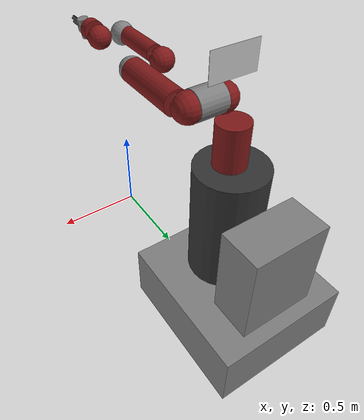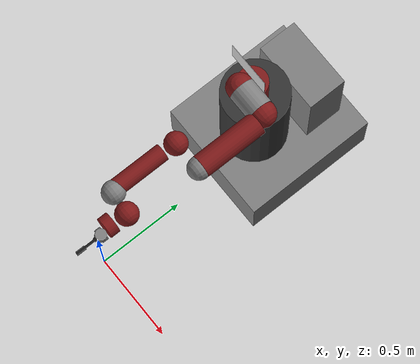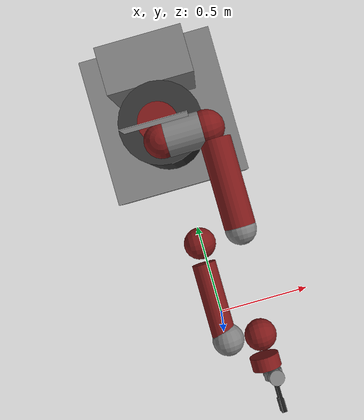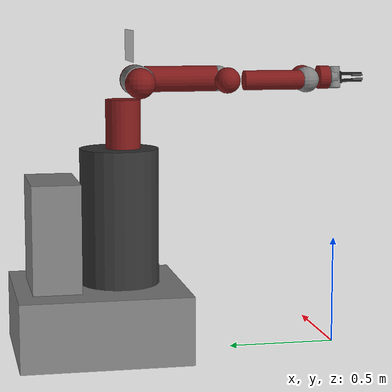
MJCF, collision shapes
<mujoco model='sawyer'>
	<compiler angle='radian' coordinate='local' meshdir='meshes/'/>
	<option collision='all' impratio='1' cone='elliptic' timestep='0.001' gravity='0 0 -9.8' viscosity='0' iterations='20' />
    <size njmax='3000' nconmax='2000' />

	<!--  ================= Visual Elements ================= /-->
    <asset>
		<mesh name='pedestal' file='sawyer/pedestal.stl' />
        <mesh name='base' file='sawyer/base.stl' />
        <mesh name='l0' file='sawyer/l0.stl' />
        <mesh name='head' file='sawyer/head.stl' />
        <mesh name='l1' file='sawyer/l1.stl' />
        <mesh name='l2' file='sawyer/l2.stl' />
        <mesh name='l3' file='sawyer/l3.stl' />
        <mesh name='l4' file='sawyer/l4.stl' />
        <mesh name='l5' file='sawyer/l5.stl' />
        <mesh name='l6' file='sawyer/l6.stl' />
		<mesh name='half_round_tip' file='sawyer/two_finger_gripper/half_round_tip.stl' />
		<mesh name='electric_gripper_base' file='sawyer/two_finger_gripper/electric_gripper_base.stl' />
        <mesh name='extended_narrow' file='sawyer/two_finger_gripper/extended_narrow.stl'/>
        <mesh name='paddle_tip' file='sawyer/two_finger_gripper/paddle_tip.stl'/>
    </asset>

	<!--  ================= Physical Properties ================= /-->
	<default>
		<geom solref='0.01 1' solimp='0.95 0.95 0.01' condim='4'/>

		<default class='arm'>
			<geom condim='1' friction='0 0 0' density='2700' contype='1' conaffinity='1' />
			<joint limited='true' damping='1' />
		</default>

		<default class='viz'>
			<geom contype='0' conaffinity='0' group='1' type='mesh'/>
		</default>

		<default class='gripper'>
			<geom condim='4' density='2700' />
			<joint limited='true' damping='0.001' stiffness='0.1' springref='0' />
		</default>

		<default class='gripper_pads'>
			<geom friction='1 0.005 0.0001' solref='0.01 1' solimp='0.95 0.98 0.001' condim='4' density='100'/>
		</default>

		<default class='takktile_unit'>
			<geom friction='5 0.003 0.0001' solref='0.008 1' solimp='0.95 0.99 0.0001' condim='6' density='300' size='0.003 0.002 0.003'  type='box' rgba='0.9 0.9 0.1 1' />
			<site size='0.0035 0.001 0.0035' type='box' rgba='0.9 0.9 0.3 0.2' />
		</default>
	</default>

	<!--  ================= Kinematic Tree ================= /-->
    <worldbody>
        <light directional='true' cutoff='40' exponent='10' diffuse='.4 .4 .4' specular='.7 .7 .7' pos='0.9 0 1.5' dir='0 0 -1' castshadow="false"/>
        <camera name='static_camera' pos='0.0 -0.75 2.7' euler='0.5 0 0' />
		<!--================= Mocap =================-->

        <!--  ================= Base ================= /-->
        <body name='base' quat='0.5 0 0 -0.5' pos='0 1 0.93' childclass='arm'>
            <inertial pos='0 0 0' mass='0' diaginertia='0 0 0' />
            <body name='controller_box' pos='0 0 0'>
                <inertial pos='-0.325 0 -0.38' mass='46.64' diaginertia='1.71363 1.27988 0.809981' />
                <geom size='0.11 0.2 0.265' pos='-0.325 0 -0.38' type='box' />
            </body>
            <body name='pedestal_feet' pos='0 0 0'>
                <inertial pos='-0.1225 0 -0.758' mass='167.09' diaginertia='8.16095 9.59375 15.0785' />
                <geom size='0.385 0.35 0.155' pos='-0.1225 0 -0.758' type='box' />
            </body>
            <body name='torso' pos='0 0 0'>
                <inertial pos='0 0 0' mass='0.0001' diaginertia='1e-08 1e-08 1e-08' />
                <geom size='0.05 0.05 0.05' type='box' contype='0' conaffinity='0' group='1' rgba='0.2 0.2 0.2 1' />
            </body>
            <body name='pedestal' pos='0 0 0'>
                <inertial pos='0 0 0' quat='0.659267 -0.259505 -0.260945 0.655692' mass='60.864' diaginertia='6.0869 5.81635 4.20915' />
                <geom pos='0.26 0.345 -0.91488' quat='0.5 0.5 -0.5 -0.5' type='mesh' contype='0' conaffinity='0' group='1' rgba='0.2 0.2 0.2 1' mesh='pedestal' />
                <geom size='0.18 0.31' pos='-0.02 0 -0.29' type='cylinder' rgba='0.2 0.2 0.2 1' />
            </body>
            <body name='arm_arm_base_link' pos='0 0 0'>
                <inertial pos='-0.0006241 -2.8025e-05 0.065404' quat='-0.209285 0.674441 0.227335 0.670558' mass='2.0687' diaginertia='0.00740351 0.00681776 0.00672942' />
                <geom type='mesh' contype='0' conaffinity='0' group='1' rgba='0.5 0.1 0.1 1' mesh='base' />
                <geom size='0.08 0.12' pos='0 0 0.12' type='cylinder' rgba='0.5 0.1 0.1 1' />
				<!--  ================= Arm ================= /-->
                <body name='arm_l0' pos='0 0 0.08' quat='1 0 0 0'>
                    <inertial pos='0.024366 0.010969 0.14363' quat='0.894823 0.00899958 -0.170275 0.412573' mass='5.3213' diaginertia='0.0651588 0.0510944 0.0186218' />
                    <joint name='arm_j0' pos='0 0 0' axis='0 0 1' range='-3.0503 3.0503' />
                    <geom type='mesh' contype='0' conaffinity='0' group='1' rgba='0.5 0.1 0.1 1' mesh='l0' />
                    <geom size='0.07' pos='0.08 0 0.23' rgba='0.5 0.1 0.1 1' />

					<!--===Head===-->
					<body name='head' pos='0 0 0.2965'>
                        <inertial pos='0.0053207 -2.6549e-05 0.1021' quat='0.999993 7.08405e-05 -0.00359857 -0.000626247' mass='1.5795' diaginertia='0.0118334 0.00827089 0.00496574' />
                        <geom type='mesh' contype='0' conaffinity='0' group='1' rgba='0.5 0.1 0.1 1' mesh='head' />
						<!--geom size='0.18' pos='0 0 0.08' rgba='0.5 0.1 0.1 1' /-->
                        <body name='screen' pos='0.03 0 0.105' quat='0.5 0.5 0.5 0.5'>
                            <inertial pos='0 0 0' mass='0.0001' diaginertia='1e-08 1e-08 1e-08' />
                            <geom size='0.12 0.07 0.001' type='box' contype='0' conaffinity='0' group='1' rgba='0.8 0.8 0.8 0.9' />
                            <geom size='0.001' rgba='0.2 0.2 0.2 1' />
                        </body>
                        <body name='head_camera' pos='0.0228027 0 0.816572' quat='0.342813 -0.618449 0.618449 -0.342813'>
                            <inertial pos='0.0228027 0 0.216572' quat='0.342813 -0.618449 0.618449 -0.342813' mass='0' diaginertia='0 0 0' />
                        </body>
                    </body>
					<!--===/Head===-->

                    <body name='arm_torso_itb' pos='-0.055 0 0.22' quat='0.707107 0 -0.707107 0'>
                        <inertial pos='0 0 0' mass='0.0001' diaginertia='1e-08 1e-08 1e-08' />
                    </body>
					<body name='arm_l1' pos='0.081 0.05 0.237' quat='0.5 -0.5 0.5 0.5'>
                        <inertial pos='-0.0030849 -0.026811 0.092521' quat='0.424888 0.891987 0.132364 -0.0794296' mass='4.505' diaginertia='0.0224339 0.0221624 0.0097097' />
                        <joint name='arm_j1' pos='0 0 0' axis='0 0 1' range='-3.8095 2.2736' />
                        <geom type='mesh' contype='0' conaffinity='0' group='1' rgba='0.5 0.1 0.1 1' mesh='l1' />
                        <geom size='0.07' pos='0 0 0.1225' rgba='0.5 0.1 0.1 1' />
                        <body name='arm_l1_2' pos='0 0 0'>
                            <inertial pos='1e-08 1e-08 1e-08' quat='0.820473 0.339851 -0.17592 0.424708' mass='1e-08' diaginertia='1e-08 1e-08 1e-08' />
                            <geom size='0.07 0.07' pos='0 0 0.035' type='cylinder' />
                        </body>
                        <body name='arm_l2' pos='0 -0.14 0.1425' quat='0.707107 0.707107 0 0'>
                            <inertial pos='-0.00016044 -0.014967 0.13582' quat='0.707831 -0.0524761 0.0516007 0.702537' mass='1.745' diaginertia='0.0257928 0.025506 0.00292515' />
                            <joint name='arm_j2' pos='0 0 0' axis='0 0 1' range='-3.0426 3.0426' />
                            <geom type='mesh' contype='0' conaffinity='0' group='1' rgba='0.5 0.1 0.1 1' mesh='l2' />
                            <geom size='0.06 0.17' pos='0 0 0.08' type='cylinder' rgba='0.5 0.1 0.1 1' />
                            <body name='arm_l2_2' pos='0 0 0'>
                                <inertial pos='1e-08 1e-08 1e-08' quat='0.820473 0.339851 -0.17592 0.424708' mass='1e-08' diaginertia='1e-08 1e-08 1e-08' />
                                <geom size='0.06' pos='0 0 0.26' />
                            </body>
                            <body name='arm_l3' pos='0 -0.042 0.26' quat='0.707107 -0.707107 0 0'>
                                <inertial pos='-0.0048135 -0.0281 -0.084154' quat='0.902999 0.385391 -0.0880901 0.168247' mass='2.5097' diaginertia='0.0102404 0.0096997 0.00369622' />
                                <joint name='arm_j3' pos='0 0 0' axis='0 0 1' range='-3.0439 3.0439' />
                                <geom type='mesh' contype='0' conaffinity='0' group='1' rgba='0.5 0.1 0.1 1' mesh='l3' />
                                <geom size='0.06' pos='0 -0.01 -0.12' rgba='0.5 0.1 0.1 1' />
                                <body name='arm_l4' pos='0 -0.125 -0.1265' quat='0.707107 0.707107 0 0'>
                                    <inertial pos='-0.0018844 0.0069001 0.1341' quat='0.803612 0.031257 -0.0298334 0.593582' mass='1.1136' diaginertia='0.0136549 0.0135493 0.00127353' />
                                    <joint name='arm_j4' pos='0 0 0' axis='0 0 1' range='-2.9761 2.9761' />
                                    <geom type='mesh' contype='0' conaffinity='0' group='1' rgba='0.5 0.1 0.1 1' mesh='l4' />
                                    <geom size='0.045 0.15' pos='0 0 0.11' type='cylinder' rgba='0.5 0.1 0.1 1' />
                                    <body name='arm_arm_itb' pos='-0.055 0 0.075' quat='0.707107 0 -0.707107 0'>
                                        <inertial pos='0 0 0' mass='0.0001' diaginertia='1e-08 1e-08 1e-08' />
                                    </body>
                                    <body name='arm_l4_2' pos='0 0 0'>
                                        <inertial pos='1e-08 1e-08 1e-08' quat='0.820473 0.339851 -0.17592 0.424708' mass='1e-08' diaginertia='1e-08 1e-08 1e-08' />
                                        <geom size='0.06' pos='0 0.01 0.26' />
                                    </body>
                                    <body name='arm_l5' pos='0 0.031 0.275' quat='0.707107 -0.707107 0 0'>
                                        <inertial pos='0.0061133 -0.023697 0.076416' quat='0.404076 0.9135 0.0473125 0.00158335' mass='1.5625' diaginertia='0.00474131 0.00422857 0.00190672' />
										<joint name='arm_j5' pos='0 0 0' axis='0 0 1' range='-2.9761 2.9761' />
                                        <geom type='mesh' contype='0' conaffinity='0' group='1' rgba='0.5 0.1 0.1 1' mesh='l5' />
                                        <geom size='0.06' pos='0 0 0.1' rgba='0.5 0.1 0.1 1' />
                                        <body name='arm_hand_camera' pos='0.039552 -0.033 0.0695' quat='0.707107 0 0.707107 0'>
                                            <inertial pos='0.039552 -0.033 0.0695' quat='0.707107 0 0.707107 0' mass='0' diaginertia='0 0 0' />
                                        </body>
                                        <body name='arm_wrist' pos='0 0 0.10541' quat='0.707107 0.707107 0 0'>
                                            <inertial pos='0 0 0.10541' quat='0.707107 0.707107 0 0' mass='0' diaginertia='0 0 0' />
                                        </body>
                                        <body name='arm_l6' pos='0 -0.11 0.1053' quat='0.0616248 0.06163 -0.704416 0.704416'>
                                            <inertial pos='-8.0726e-06 0.0085838 -0.0049566' quat='0.479044 0.515636 -0.513069 0.491322' mass='0.3292' diaginertia='0.000360258 0.000311068 0.000214974' />
                                            <joint name='arm_j6' pos='0 0 0' axis='0 0 1' range='-4.7124 4.7124' />
											<body name='gripper_origin' pos='0 0 0.18735' quat='0.707107 0 0 0.707107'>
											</body>
                                            <geom type='mesh' contype='0' conaffinity='0' group='1' rgba='0.5 0.1 0.1 1' mesh='l6' />
                                            <geom size='0.055 0.025' pos='0 0.015 -0.01' type='cylinder' rgba='0.5 0.1 0.1 1' />
                                            <body name='arm_hand' pos='0 0 0.0245' quat='0.707107 0 0 0.707107'>
                                                <inertial pos='1e-08 1e-08 1e-08' quat='0.820473 0.339851 -0.17592 0.424708' mass='1e-08' diaginertia='1e-08 1e-08 1e-08' />
                                                <geom size='0.035 0.015' pos='0 0 0.02' type='cylinder' />
												<!--  ================= Gripper ================= /-->
                                                <body name='arm_gripper_base' pos='0 0 0.025'>
                                                    <inertial pos='0 0 0' quat='-0.5 0.5 0.5 0.5' mass='0.3' diaginertia='3e-08 2e-08 2e-08' />
                                                    <geom quat='0 0 0.707107 0.707107' class='viz' mesh='electric_gripper_base' />
                                                    <geom size='0.029 0.05' quat='0 0 0.707107 0.707107' type='cylinder' />
                                                    <body name='finger_l' pos='0 -0.0015 0.02'>
                                                        <inertial pos='0 0 0' quat='0 0 0 -1' mass='0.02' diaginertia='0.01 0.01 0.01' />
                                                        <geom class='viz' mesh='extended_narrow' euler='1.57 1.57 0' rgba='0.1 0.1 0.1 1'/>
                                                        <geom size='0.005 0.00675 0.05635' pos='0 0.01725 0.0615' quat='0 0 0 -1' type='box' rgba='0.1 0.1 0.1 1'/>
                                                        <geom size='0.005 0.025 0.0085' pos='-0.005 -0.003 0.0083' quat='0 0 0 -1' type='box' rgba='0.1 0.1 0.1 1'/>
														<geom size='0.01 0.005 0.025' pos='0 0.012 0.095' type='box' rgba='0.3 0.3 0.3 0.9' class='gripper_pads' />
														<!--  === Sensors === /-->

                                                    </body>
                                                    <body name='finger_r' pos='0 0.0015 0.02'>
                                                        <inertial pos='0 0 0' mass='0.02' diaginertia='0.01 0.01 0.01' />
                                                        <geom class='viz' mesh='extended_narrow' euler='1.57 -1.57 0' rgba='0.1 0.1 0.1 1'/>
                                                        <geom size='0.005 0.00675 0.05635' pos='0 -0.01725 0.0615' type='box' rgba='0.1 0.1 0.1 1'/>
                                                        <geom size='0.005 0.025 0.0085' pos='0.005 0.003 0.0083' type='box' rgba='0.1 0.1 0.1 1'/>
														<geom size='0.01 0.005 0.025' pos='0 -0.012 0.095' type='box' rgba='0.3 0.3 0.3 0.9' class='gripper_pads' />
														<!--  === Sensors === /-->

                                                    </body>
                                                </body>
                                            </body>
                                        </body>
                                    </body>
                                </body>
                            </body>
                        </body>
                    </body>
                </body>
            </body>
        </body>
    </worldbody>

	<!--  ================= Constraints ================= /-->

	<!--  ================= Actuators ================= /-->
	<actuator>
		<!--  ================= Torque actuators ================= /-->
		<motor joint='arm_j0' name='tj0' ctrllimited='false'/>
		<motor joint='arm_j1' name='tj1' ctrllimited='false'/>
		<motor joint='arm_j2' name='tj2' ctrllimited='false'/>
		<motor joint='arm_j3' name='tj3' ctrllimited='false'/>
		<motor joint='arm_j4' name='tj4' ctrllimited='false'/>
		<motor joint='arm_j5' name='tj5' ctrllimited='false'/>
		<motor joint='arm_j6' name='tj6' ctrllimited='false'/>

		<!--  ================= Position actuators ================= /-->
	</actuator>

	<!--  ================= Sensors ================= /-->
	<sensor>
        <jointpos name='j0' joint='arm_j0' />
        <jointpos name='j1' joint='arm_j1' />
        <jointpos name='j2' joint='arm_j2' />
        <jointpos name='j3' joint='arm_j3' />
        <jointpos name='j4' joint='arm_j4' />
        <jointpos name='j5' joint='arm_j5' />
        <jointpos name='j6' joint='arm_j6' />

	</sensor>
</mujoco>
